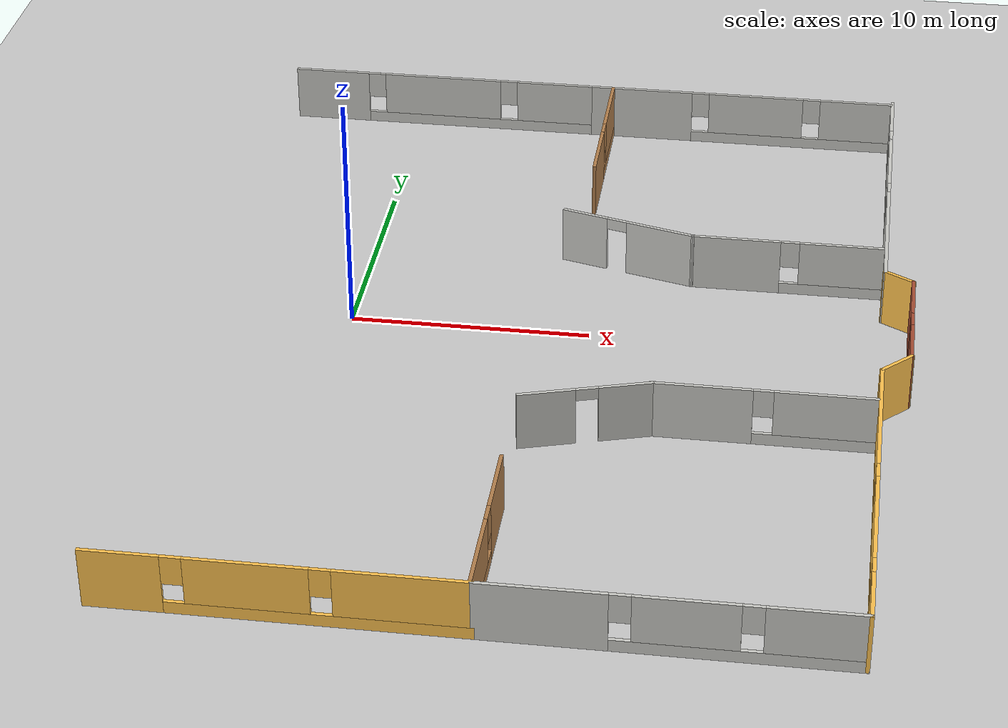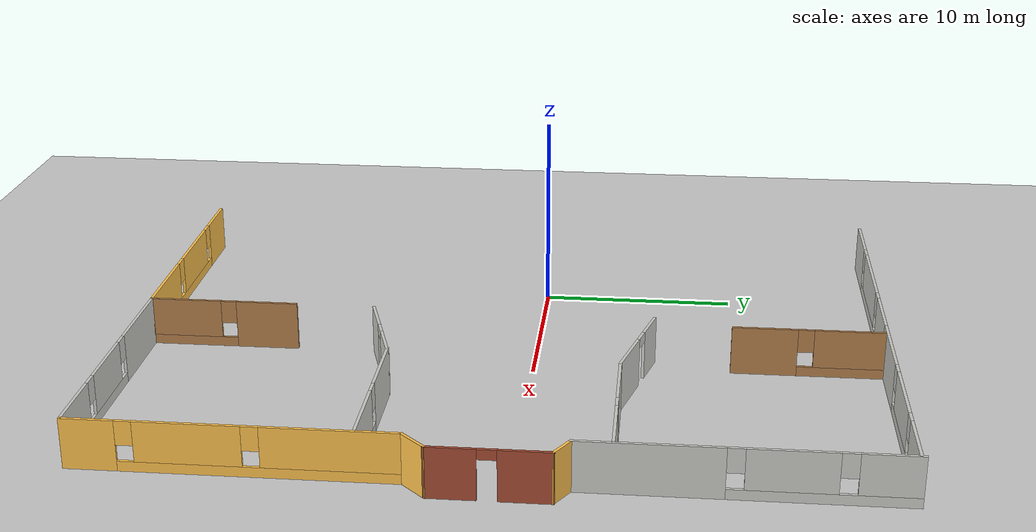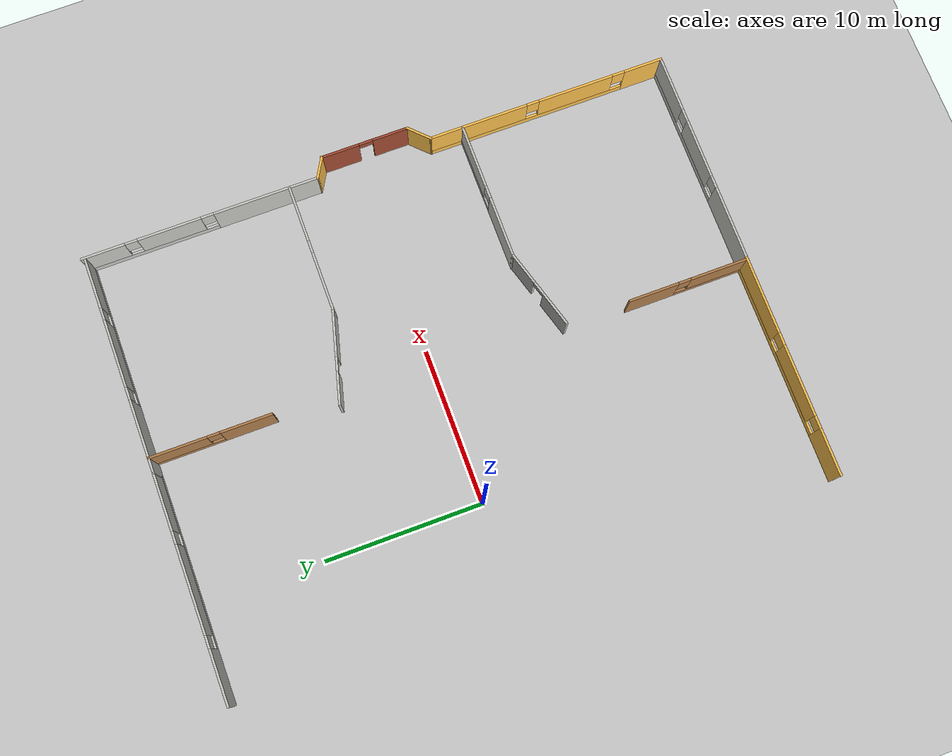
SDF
<sdf version="1.6">
 <world name="default">
  <model name="ground_plane">
   <static>1</static>
   <link name="link">
    <collision name="collision">
     <geometry><plane><normal>0 0 1</normal><size>100 100</size></plane></geometry>
     <surface><friction><ode><mu>100</mu><mu2>50</mu2></ode></friction></surface>
    </collision>
    <visual name="visual">
     <cast_shadows>0</cast_shadows>
     <geometry><plane><normal>0 0 1</normal><size>100 100</size></plane></geometry>
     <material>
      <script><uri>file://media/materials/scripts/gazebo.material</uri><name>Gazebo/Grey</name></script>
     </material>
    </visual>
   </link>
  </model>
  <model name="model">
   <pose>1.3797 -1.1711 0 0 -0 0</pose>
   <link name="Wall_24">
    <pose>-0.167493 -18.9183 0 0 -0 0</pose>
    <visual name="Wall_24_Visual_0">
     <pose>-5.61853 0 1.25 0 -0 0</pose>
     <geometry><box><size>3.01295 0.15 2.5</size></box></geometry>
     <material>
      <script><uri>file://media/materials/scripts/gazebo.material</uri><name>Gazebo/Grey</name></script>
      <ambient>1 0.764706 0.305882 1</ambient>
     </material>
     <meta><layer>0</layer></meta>
    </visual>
    <collision name="Wall_24_Collision_0">
     <geometry><box><size>3.01295 0.15 2.5</size></box></geometry>
     <pose>-5.61853 0 1.25 0 -0 0</pose>
    </collision>
    <visual name="Wall_24_Visual_1">
     <pose>1.50647 0 0.25 0 -0 0</pose>
     <geometry><box><size>11.2371 0.15 0.5</size></box></geometry>
     <material>
      <script><uri>file://media/materials/scripts/gazebo.material</uri><name>Gazebo/Grey</name></script>
      <ambient>1 0.764706 0.305882 1</ambient>
     </material>
     <meta><layer>0</layer></meta>
    </visual>
    <collision name="Wall_24_Collision_1">
     <geometry><box><size>11.2371 0.15 0.5</size></box></geometry>
     <pose>1.50647 0 0.25 0 -0 0</pose>
    </collision>
    <visual name="Wall_24_Visual_2">
     <pose>-1.02682 0 1.5 0 -0 0</pose>
     <geometry><box><size>4.57046 0.15 2</size></box></geometry>
     <material>
      <script><uri>file://media/materials/scripts/gazebo.material</uri><name>Gazebo/Grey</name></script>
      <ambient>1 0.764706 0.305882 1</ambient>
     </material>
     <meta><layer>0</layer></meta>
    </visual>
    <collision name="Wall_24_Collision_2">
     <geometry><box><size>4.57046 0.15 2</size></box></geometry>
     <pose>-1.02682 0 1.5 0 -0 0</pose>
    </collision>
    <visual name="Wall_24_Visual_3">
     <pose>4.5917 0 1.5 0 -0 0</pose>
     <geometry><box><size>5.06659 0.15 2</size></box></geometry>
     <material>
      <script><uri>file://media/materials/scripts/gazebo.material</uri><name>Gazebo/Grey</name></script>
      <ambient>1 0.764706 0.305882 1</ambient>
     </material>
     <meta><layer>0</layer></meta>
    </visual>
    <collision name="Wall_24_Collision_3">
     <geometry><box><size>5.06659 0.15 2</size></box></geometry>
     <pose>4.5917 0 1.5 0 -0 0</pose>
    </collision>
    <visual name="Wall_24_Visual_4">
     <pose>-3.71205 0 1.9 0 -0 0</pose>
     <geometry><box><size>0.8 0.15 1.2</size></box></geometry>
     <material>
      <script><uri>file://media/materials/scripts/gazebo.material</uri><name>Gazebo/Grey</name></script>
      <ambient>1 0.764706 0.305882 1</ambient>
     </material>
     <meta><layer>0</layer></meta>
    </visual>
    <collision name="Wall_24_Collision_4">
     <geometry><box><size>0.8 0.15 1.2</size></box></geometry>
     <pose>-3.71205 0 1.9 0 -0 0</pose>
    </collision>
    <visual name="Wall_24_Visual_5">
     <pose>1.65841 0 1.9 0 -0 0</pose>
     <geometry><box><size>0.8 0.15 1.2</size></box></geometry>
     <material>
      <script><uri>file://media/materials/scripts/gazebo.material</uri><name>Gazebo/Grey</name></script>
      <ambient>1 0.764706 0.305882 1</ambient>
     </material>
     <meta><layer>0</layer></meta>
    </visual>
    <collision name="Wall_24_Collision_5">
     <geometry><box><size>0.8 0.15 1.2</size></box></geometry>
     <pose>1.65841 0 1.9 0 -0 0</pose>
    </collision>
   </link>
   <link name="Wall_25">
    <pose>13.8075 -18.9183 0 0 -0 0</pose>
    <visual name="Wall_25_Visual_0">
     <pose>-4.56921 0 1.25 0 -0 0</pose>
     <geometry><box><size>4.86159 0.15 2.5</size></box></geometry>
     <material>
      <script><uri>file://media/materials/scripts/gazebo.material</uri><name>Gazebo/CeilingTiled</name></script>
      <ambient>1 0.764706 0.305882 1</ambient>
     </material>
     <meta><layer>0</layer></meta>
    </visual>
    <collision name="Wall_25_Collision_0">
     <geometry><box><size>4.86159 0.15 2.5</size></box></geometry>
     <pose>-4.56921 0 1.25 0 -0 0</pose>
    </collision>
    <visual name="Wall_25_Visual_1">
     <pose>2.43079 0 0.25 0 -0 0</pose>
     <geometry><box><size>9.13841 0.15 0.5</size></box></geometry>
     <material>
      <script><uri>file://media/materials/scripts/gazebo.material</uri><name>Gazebo/CeilingTiled</name></script>
      <ambient>1 0.764706 0.305882 1</ambient>
     </material>
     <meta><layer>0</layer></meta>
    </visual>
    <collision name="Wall_25_Collision_1">
     <geometry><box><size>9.13841 0.15 0.5</size></box></geometry>
     <pose>2.43079 0 0.25 0 -0 0</pose>
    </collision>
    <visual name="Wall_25_Visual_2">
     <pose>0.58065 0 1.5 0 -0 0</pose>
     <geometry><box><size>3.83812 0.15 2</size></box></geometry>
     <material>
      <script><uri>file://media/materials/scripts/gazebo.material</uri><name>Gazebo/CeilingTiled</name></script>
      <ambient>1 0.764706 0.305882 1</ambient>
     </material>
     <meta><layer>0</layer></meta>
    </visual>
    <collision name="Wall_25_Collision_2">
     <geometry><box><size>3.83812 0.15 2</size></box></geometry>
     <pose>0.58065 0 1.5 0 -0 0</pose>
    </collision>
    <visual name="Wall_25_Visual_3">
     <pose>5.14986 0 1.5 0 -0 0</pose>
     <geometry><box><size>3.70029 0.15 2</size></box></geometry>
     <material>
      <script><uri>file://media/materials/scripts/gazebo.material</uri><name>Gazebo/CeilingTiled</name></script>
      <ambient>1 0.764706 0.305882 1</ambient>
     </material>
     <meta><layer>0</layer></meta>
    </visual>
    <collision name="Wall_25_Collision_3">
     <geometry><box><size>3.70029 0.15 2</size></box></geometry>
     <pose>5.14986 0 1.5 0 -0 0</pose>
    </collision>
    <visual name="Wall_25_Visual_4">
     <pose>-1.73841 0 1.9 0 -0 0</pose>
     <geometry><box><size>0.8 0.15 1.2</size></box></geometry>
     <material>
      <script><uri>file://media/materials/scripts/gazebo.material</uri><name>Gazebo/CeilingTiled</name></script>
      <ambient>1 0.764706 0.305882 1</ambient>
     </material>
     <meta><layer>0</layer></meta>
    </visual>
    <collision name="Wall_25_Collision_4">
     <geometry><box><size>0.8 0.15 1.2</size></box></geometry>
     <pose>-1.73841 0 1.9 0 -0 0</pose>
    </collision>
    <visual name="Wall_25_Visual_5">
     <pose>2.89971 0 1.9 0 -0 0</pose>
     <geometry><box><size>0.8 0.15 1.2</size></box></geometry>
     <material>
      <script><uri>file://media/materials/scripts/gazebo.material</uri><name>Gazebo/CeilingTiled</name></script>
      <ambient>1 0.764706 0.305882 1</ambient>
     </material>
     <meta><layer>0</layer></meta>
    </visual>
    <collision name="Wall_25_Collision_5">
     <geometry><box><size>0.8 0.15 1.2</size></box></geometry>
     <pose>2.89971 0 1.9 0 -0 0</pose>
    </collision>
   </link>
   <link name="Wall_26">
    <pose>20.7325 -11.2433 0 0 -0 1.5708</pose>
    <visual name="Wall_26_Visual_0">
     <pose>-6.48124 0 1.25 0 -0 0</pose>
     <geometry><box><size>2.53753 0.15 2.5</size></box></geometry>
     <material>
      <script><uri>file://media/materials/scripts/gazebo.material</uri><name>Gazebo/Grey</name></script>
      <ambient>1 0.764706 0.305882 1</ambient>
     </material>
     <meta><layer>0</layer></meta>
    </visual>
    <collision name="Wall_26_Collision_0">
     <geometry><box><size>2.53753 0.15 2.5</size></box></geometry>
     <pose>-6.48124 0 1.25 0 -0 0</pose>
    </collision>
    <visual name="Wall_26_Visual_1">
     <pose>1.26876 0 0.25 0 -0 0</pose>
     <geometry><box><size>12.9625 0.15 0.5</size></box></geometry>
     <material>
      <script><uri>file://media/materials/scripts/gazebo.material</uri><name>Gazebo/Grey</name></script>
      <ambient>1 0.764706 0.305882 1</ambient>
     </material>
     <meta><layer>0</layer></meta>
    </visual>
    <collision name="Wall_26_Collision_1">
     <geometry><box><size>12.9625 0.15 0.5</size></box></geometry>
     <pose>1.26876 0 0.25 0 -0 0</pose>
    </collision>
    <visual name="Wall_26_Visual_2">
     <pose>-1.95201 0 1.5 0 -0 0</pose>
     <geometry><box><size>4.92092 0.15 2</size></box></geometry>
     <material>
      <script><uri>file://media/materials/scripts/gazebo.material</uri><name>Gazebo/Grey</name></script>
      <ambient>1 0.764706 0.305882 1</ambient>
     </material>
     <meta><layer>0</layer></meta>
    </visual>
    <collision name="Wall_26_Collision_2">
     <geometry><box><size>4.92092 0.15 2</size></box></geometry>
     <pose>-1.95201 0 1.5 0 -0 0</pose>
    </collision>
    <visual name="Wall_26_Visual_3">
     <pose>4.52922 0 1.5 0 -0 0</pose>
     <geometry><box><size>6.44155 0.15 2</size></box></geometry>
     <material>
      <script><uri>file://media/materials/scripts/gazebo.material</uri><name>Gazebo/Grey</name></script>
      <ambient>1 0.764706 0.305882 1</ambient>
     </material>
     <meta><layer>0</layer></meta>
    </visual>
    <collision name="Wall_26_Collision_3">
     <geometry><box><size>6.44155 0.15 2</size></box></geometry>
     <pose>4.52922 0 1.5 0 -0 0</pose>
    </collision>
    <visual name="Wall_26_Visual_4">
     <pose>-4.81247 0 1.9 0 -0 0</pose>
     <geometry><box><size>0.8 0.15 1.2</size></box></geometry>
     <material>
      <script><uri>file://media/materials/scripts/gazebo.material</uri><name>Gazebo/Grey</name></script>
      <ambient>1 0.764706 0.305882 1</ambient>
     </material>
     <meta><layer>0</layer></meta>
    </visual>
    <collision name="Wall_26_Collision_4">
     <geometry><box><size>0.8 0.15 1.2</size></box></geometry>
     <pose>-4.81247 0 1.9 0 -0 0</pose>
    </collision>
    <visual name="Wall_26_Visual_5">
     <pose>0.908446 0 1.9 0 -0 0</pose>
     <geometry><box><size>0.8 0.15 1.2</size></box></geometry>
     <material>
      <script><uri>file://media/materials/scripts/gazebo.material</uri><name>Gazebo/Grey</name></script>
      <ambient>1 0.764706 0.305882 1</ambient>
     </material>
     <meta><layer>0</layer></meta>
    </visual>
    <collision name="Wall_26_Collision_5">
     <geometry><box><size>0.8 0.15 1.2</size></box></geometry>
     <pose>0.908446 0 1.9 0 -0 0</pose>
    </collision>
   </link>
   <link name="Wall_27">
    <collision name="Wall_27_Collision">
     <geometry><box><size>1.75 0.15 2.5</size></box></geometry>
     <pose>0 0 1.25 0 -0 0</pose>
    </collision>
    <visual name="Wall_27_Visual">
     <pose>0 0 1.25 0 -0 0</pose>
     <geometry><box><size>1.75 0.15 2.5</size></box></geometry>
     <material>
      <script><uri>file://media/materials/scripts/gazebo.material</uri><name>Gazebo/Grey</name></script>
      <ambient>1 0.764706 0.305882 1</ambient>
     </material>
     <meta><layer>0</layer></meta>
    </visual>
    <pose>21.2982 -3.00259 0 0 -0 0.785398</pose>
   </link>
   <link name="Wall_28">
    <pose>21.8639 0.363092 0 0 -0 1.5708</pose>
    <visual name="Wall_28_Visual_0">
     <pose>-1.69424 0 1.25 0 -0 0</pose>
     <geometry><box><size>2.36151 0.15 2.5</size></box></geometry>
     <material>
      <script><uri>file://media/materials/scripts/gazebo.material</uri><name>Gazebo/Bricks</name></script>
      <ambient>1 1 1 1</ambient>
     </material>
     <meta><layer>0</layer></meta>
    </visual>
    <collision name="Wall_28_Collision_0">
     <geometry><box><size>2.36151 0.15 2.5</size></box></geometry>
     <pose>-1.69424 0 1.25 0 -0 0</pose>
    </collision>
    <visual name="Wall_28_Visual_1">
     <pose>1.63076 0 1.25 0 -0 0</pose>
     <geometry><box><size>2.48849 0.15 2.5</size></box></geometry>
     <material>
      <script><uri>file://media/materials/scripts/gazebo.material</uri><name>Gazebo/Bricks</name></script>
      <ambient>1 1 1 1</ambient>
     </material>
     <meta><layer>0</layer></meta>
    </visual>
    <collision name="Wall_28_Collision_1">
     <geometry><box><size>2.48849 0.15 2.5</size></box></geometry>
     <pose>1.63076 0 1.25 0 -0 0</pose>
    </collision>
    <visual name="Wall_28_Visual_2">
     <pose>-0.063486 0 2.25 0 -0 0</pose>
     <geometry><box><size>0.9 0.15 0.5</size></box></geometry>
     <material>
      <script><uri>file://media/materials/scripts/gazebo.material</uri><name>Gazebo/Bricks</name></script>
      <ambient>1 1 1 1</ambient>
     </material>
     <meta><layer>0</layer></meta>
    </visual>
    <collision name="Wall_28_Collision_2">
     <geometry><box><size>0.9 0.15 0.5</size></box></geometry>
     <pose>-0.063486 0 2.25 0 -0 0</pose>
    </collision>
   </link>
   <link name="Wall_29">
    <collision name="Wall_29_Collision">
     <geometry><box><size>1.5 0.15 2.5</size></box></geometry>
     <pose>0 0 1.25 0 -0 0</pose>
    </collision>
    <visual name="Wall_29_Visual">
     <pose>0 0 1.25 0 -0 0</pose>
     <geometry><box><size>1.5 0.15 2.5</size></box></geometry>
     <material>
      <script><uri>file://media/materials/scripts/gazebo.material</uri><name>Gazebo/Grey</name></script>
      <ambient>1 0.764706 0.305882 1</ambient>
     </material>
     <meta><layer>0</layer></meta>
    </visual>
    <pose>21.2793 3.50059 0 0 -0 2.61799</pose>
   </link>
   <link name="Wall_42">
    <pose>20.6947 11.3881 0 0 -0 1.5708</pose>
    <visual name="Wall_42_Visual_0">
     <pose>-4.22815 0 1.25 0 -0 0</pose>
     <geometry><box><size>6.7937 0.15 2.5</size></box></geometry>
     <material>
      <script><uri>file://media/materials/scripts/gazebo.material</uri><name>Gazebo/CeilingTiled</name></script>
      <ambient>1 0.764706 0.305882 1</ambient>
     </material>
     <meta><layer>0</layer></meta>
    </visual>
    <collision name="Wall_42_Collision_0">
     <geometry><box><size>6.7937 0.15 2.5</size></box></geometry>
     <pose>-4.22815 0 1.25 0 -0 0</pose>
    </collision>
    <visual name="Wall_42_Visual_1">
     <pose>3.39685 0 0.25 0 -0 0</pose>
     <geometry><box><size>8.4563 0.15 0.5</size></box></geometry>
     <material>
      <script><uri>file://media/materials/scripts/gazebo.material</uri><name>Gazebo/CeilingTiled</name></script>
      <ambient>1 0.764706 0.305882 1</ambient>
     </material>
     <meta><layer>0</layer></meta>
    </visual>
    <collision name="Wall_42_Collision_1">
     <geometry><box><size>8.4563 0.15 0.5</size></box></geometry>
     <pose>3.39685 0 0.25 0 -0 0</pose>
    </collision>
    <visual name="Wall_42_Visual_2">
     <pose>2.00082 0 1.5 0 -0 0</pose>
     <geometry><box><size>4.06425 0.15 2</size></box></geometry>
     <material>
      <script><uri>file://media/materials/scripts/gazebo.material</uri><name>Gazebo/CeilingTiled</name></script>
      <ambient>1 0.764706 0.305882 1</ambient>
     </material>
     <meta><layer>0</layer></meta>
    </visual>
    <collision name="Wall_42_Collision_2">
     <geometry><box><size>4.06425 0.15 2</size></box></geometry>
     <pose>2.00082 0 1.5 0 -0 0</pose>
    </collision>
    <visual name="Wall_42_Visual_3">
     <pose>6.22897 0 1.5 0 -0 0</pose>
     <geometry><box><size>2.79205 0.15 2</size></box></geometry>
     <material>
      <script><uri>file://media/materials/scripts/gazebo.material</uri><name>Gazebo/CeilingTiled</name></script>
      <ambient>1 0.764706 0.305882 1</ambient>
     </material>
     <meta><layer>0</layer></meta>
    </visual>
    <collision name="Wall_42_Collision_3">
     <geometry><box><size>2.79205 0.15 2</size></box></geometry>
     <pose>6.22897 0 1.5 0 -0 0</pose>
    </collision>
    <visual name="Wall_42_Visual_4">
     <pose>-0.431303 0 1.9 0 -0 0</pose>
     <geometry><box><size>0.8 0.15 1.2</size></box></geometry>
     <material>
      <script><uri>file://media/materials/scripts/gazebo.material</uri><name>Gazebo/CeilingTiled</name></script>
      <ambient>1 0.764706 0.305882 1</ambient>
     </material>
     <meta><layer>0</layer></meta>
    </visual>
    <collision name="Wall_42_Collision_4">
     <geometry><box><size>0.8 0.15 1.2</size></box></geometry>
     <pose>-0.431303 0 1.9 0 -0 0</pose>
    </collision>
    <visual name="Wall_42_Visual_5">
     <pose>4.43295 0 1.9 0 -0 0</pose>
     <geometry><box><size>0.8 0.15 1.2</size></box></geometry>
     <material>
      <script><uri>file://media/materials/scripts/gazebo.material</uri><name>Gazebo/CeilingTiled</name></script>
      <ambient>1 0.764706 0.305882 1</ambient>
     </material>
     <meta><layer>0</layer></meta>
    </visual>
    <collision name="Wall_42_Collision_5">
     <geometry><box><size>0.8 0.15 1.2</size></box></geometry>
     <pose>4.43295 0 1.9 0 -0 0</pose>
    </collision>
   </link>
   <link name="Wall_52">
    <pose>-0.292493 18.7535 0 0 -0 0</pose>
    <visual name="Wall_52_Visual_0">
     <pose>-5.39608 0 1.25 0 -0 0</pose>
     <geometry><box><size>3.45785 0.15 2.5</size></box></geometry>
     <material>
      <script><uri>file://media/materials/scripts/gazebo.material</uri><name>Gazebo/CeilingTiled</name></script>
      <ambient>1 0.764706 0.305882 1</ambient>
     </material>
     <meta><layer>0</layer></meta>
    </visual>
    <collision name="Wall_52_Collision_0">
     <geometry><box><size>3.45785 0.15 2.5</size></box></geometry>
     <pose>-5.39608 0 1.25 0 -0 0</pose>
    </collision>
    <visual name="Wall_52_Visual_1">
     <pose>1.72892 0 0.25 0 -0 0</pose>
     <geometry><box><size>10.7922 0.15 0.5</size></box></geometry>
     <material>
      <script><uri>file://media/materials/scripts/gazebo.material</uri><name>Gazebo/CeilingTiled</name></script>
      <ambient>1 0.764706 0.305882 1</ambient>
     </material>
     <meta><layer>0</layer></meta>
    </visual>
    <collision name="Wall_52_Collision_1">
     <geometry><box><size>10.7922 0.15 0.5</size></box></geometry>
     <pose>1.72892 0 0.25 0 -0 0</pose>
    </collision>
    <visual name="Wall_52_Visual_2">
     <pose>-0.115746 0 1.5 0 -0 0</pose>
     <geometry><box><size>5.50281 0.15 2</size></box></geometry>
     <material>
      <script><uri>file://media/materials/scripts/gazebo.material</uri><name>Gazebo/CeilingTiled</name></script>
      <ambient>1 0.764706 0.305882 1</ambient>
     </material>
     <meta><layer>0</layer></meta>
    </visual>
    <collision name="Wall_52_Collision_2">
     <geometry><box><size>5.50281 0.15 2</size></box></geometry>
     <pose>-0.115746 0 1.5 0 -0 0</pose>
    </collision>
    <visual name="Wall_52_Visual_3">
     <pose>5.28033 0 1.5 0 -0 0</pose>
     <geometry><box><size>3.68934 0.15 2</size></box></geometry>
     <material>
      <script><uri>file://media/materials/scripts/gazebo.material</uri><name>Gazebo/CeilingTiled</name></script>
      <ambient>1 0.764706 0.305882 1</ambient>
     </material>
     <meta><layer>0</layer></meta>
    </visual>
    <collision name="Wall_52_Collision_3">
     <geometry><box><size>3.68934 0.15 2</size></box></geometry>
     <pose>5.28033 0 1.5 0 -0 0</pose>
    </collision>
    <visual name="Wall_52_Visual_4">
     <pose>-3.26715 0 1.9 0 -0 0</pose>
     <geometry><box><size>0.8 0.15 1.2</size></box></geometry>
     <material>
      <script><uri>file://media/materials/scripts/gazebo.material</uri><name>Gazebo/CeilingTiled</name></script>
      <ambient>1 0.764706 0.305882 1</ambient>
     </material>
     <meta><layer>0</layer></meta>
    </visual>
    <collision name="Wall_52_Collision_4">
     <geometry><box><size>0.8 0.15 1.2</size></box></geometry>
     <pose>-3.26715 0 1.9 0 -0 0</pose>
    </collision>
    <visual name="Wall_52_Visual_5">
     <pose>3.03566 0 1.9 0 -0 0</pose>
     <geometry><box><size>0.8 0.15 1.2</size></box></geometry>
     <material>
      <script><uri>file://media/materials/scripts/gazebo.material</uri><name>Gazebo/CeilingTiled</name></script>
      <ambient>1 0.764706 0.305882 1</ambient>
     </material>
     <meta><layer>0</layer></meta>
    </visual>
    <collision name="Wall_52_Collision_5">
     <geometry><box><size>0.8 0.15 1.2</size></box></geometry>
     <pose>3.03566 0 1.9 0 -0 0</pose>
    </collision>
   </link>
   <link name="Wall_53">
    <pose>13.6825 18.7535 0 0 -0 0</pose>
    <visual name="Wall_53_Visual_0">
     <pose>-4.64128 0 1.25 0 -0 0</pose>
     <geometry><box><size>4.71744 0.15 2.5</size></box></geometry>
     <material>
      <script><uri>file://media/materials/scripts/gazebo.material</uri><name>Gazebo/CeilingTiled</name></script>
      <ambient>1 0.764706 0.305882 1</ambient>
     </material>
     <meta><layer>0</layer></meta>
    </visual>
    <collision name="Wall_53_Collision_0">
     <geometry><box><size>4.71744 0.15 2.5</size></box></geometry>
     <pose>-4.64128 0 1.25 0 -0 0</pose>
    </collision>
    <visual name="Wall_53_Visual_1">
     <pose>2.35872 0 0.25 0 -0 0</pose>
     <geometry><box><size>9.28256 0.15 0.5</size></box></geometry>
     <material>
      <script><uri>file://media/materials/scripts/gazebo.material</uri><name>Gazebo/CeilingTiled</name></script>
      <ambient>1 0.764706 0.305882 1</ambient>
     </material>
     <meta><layer>0</layer></meta>
    </visual>
    <collision name="Wall_53_Collision_1">
     <geometry><box><size>9.28256 0.15 0.5</size></box></geometry>
     <pose>2.35872 0 0.25 0 -0 0</pose>
    </collision>
    <visual name="Wall_53_Visual_2">
     <pose>0.700074 0 1.5 0 -0 0</pose>
     <geometry><box><size>4.36526 0.15 2</size></box></geometry>
     <material>
      <script><uri>file://media/materials/scripts/gazebo.material</uri><name>Gazebo/CeilingTiled</name></script>
      <ambient>1 0.764706 0.305882 1</ambient>
     </material>
     <meta><layer>0</layer></meta>
    </visual>
    <collision name="Wall_53_Collision_2">
     <geometry><box><size>4.36526 0.15 2</size></box></geometry>
     <pose>0.700074 0 1.5 0 -0 0</pose>
    </collision>
    <visual name="Wall_53_Visual_3">
     <pose>5.34135 0 1.5 0 -0 0</pose>
     <geometry><box><size>3.31729 0.15 2</size></box></geometry>
     <material>
      <script><uri>file://media/materials/scripts/gazebo.material</uri><name>Gazebo/CeilingTiled</name></script>
      <ambient>1 0.764706 0.305882 1</ambient>
     </material>
     <meta><layer>0</layer></meta>
    </visual>
    <collision name="Wall_53_Collision_3">
     <geometry><box><size>3.31729 0.15 2</size></box></geometry>
     <pose>5.34135 0 1.5 0 -0 0</pose>
    </collision>
    <visual name="Wall_53_Visual_4">
     <pose>-1.88256 0 1.9 0 -0 0</pose>
     <geometry><box><size>0.8 0.15 1.2</size></box></geometry>
     <material>
      <script><uri>file://media/materials/scripts/gazebo.material</uri><name>Gazebo/CeilingTiled</name></script>
      <ambient>1 0.764706 0.305882 1</ambient>
     </material>
     <meta><layer>0</layer></meta>
    </visual>
    <collision name="Wall_53_Collision_4">
     <geometry><box><size>0.8 0.15 1.2</size></box></geometry>
     <pose>-1.88256 0 1.9 0 -0 0</pose>
    </collision>
    <visual name="Wall_53_Visual_5">
     <pose>3.28271 0 1.9 0 -0 0</pose>
     <geometry><box><size>0.8 0.15 1.2</size></box></geometry>
     <material>
      <script><uri>file://media/materials/scripts/gazebo.material</uri><name>Gazebo/CeilingTiled</name></script>
      <ambient>1 0.764706 0.305882 1</ambient>
     </material>
     <meta><layer>0</layer></meta>
    </visual>
    <collision name="Wall_53_Collision_5">
     <geometry><box><size>0.8 0.15 1.2</size></box></geometry>
     <pose>3.28271 0 1.9 0 -0 0</pose>
    </collision>
   </link>
   <link name="Wall_58">
    <pose>9.69751 6.42988 0 0 0 -0.261799</pose>
    <visual name="Wall_58_Visual_0">
     <pose>-1.98198 0 1.25 0 -0 0</pose>
     <geometry><box><size>2.03605 0.15 2.5</size></box></geometry>
     <material>
      <script><uri>file://media/materials/scripts/gazebo.material</uri><name>Gazebo/CeilingTiled</name></script>
      <ambient>0.333333 0.666667 1 1</ambient>
     </material>
     <meta><layer>0</layer></meta>
    </visual>
    <collision name="Wall_58_Collision_0">
     <geometry><box><size>2.03605 0.15 2.5</size></box></geometry>
     <pose>-1.98198 0 1.25 0 -0 0</pose>
    </collision>
    <visual name="Wall_58_Visual_1">
     <pose>1.46802 0 1.25 0 -0 0</pose>
     <geometry><box><size>3.06395 0.15 2.5</size></box></geometry>
     <material>
      <script><uri>file://media/materials/scripts/gazebo.material</uri><name>Gazebo/CeilingTiled</name></script>
      <ambient>0.333333 0.666667 1 1</ambient>
     </material>
     <meta><layer>0</layer></meta>
    </visual>
    <collision name="Wall_58_Collision_1">
     <geometry><box><size>3.06395 0.15 2.5</size></box></geometry>
     <pose>1.46802 0 1.25 0 -0 0</pose>
    </collision>
    <visual name="Wall_58_Visual_2">
     <pose>-0.513955 0 2.25 0 -0 0</pose>
     <geometry><box><size>0.9 0.15 0.5</size></box></geometry>
     <material>
      <script><uri>file://media/materials/scripts/gazebo.material</uri><name>Gazebo/CeilingTiled</name></script>
      <ambient>0.333333 0.666667 1 1</ambient>
     </material>
     <meta><layer>0</layer></meta>
    </visual>
    <collision name="Wall_58_Collision_2">
     <geometry><box><size>0.9 0.15 0.5</size></box></geometry>
     <pose>-0.513955 0 2.25 0 -0 0</pose>
    </collision>
   </link>
   <link name="Wall_59">
    <pose>16.5728 5.67284 0 0 -0 0</pose>
    <visual name="Wall_59_Visual_0">
     <pose>-2.21976 0 1.25 0 -0 0</pose>
     <geometry><box><size>3.81048 0.15 2.5</size></box></geometry>
     <material>
      <script><uri>file://media/materials/scripts/gazebo.material</uri><name>Gazebo/CeilingTiled</name></script>
      <ambient>0.333333 0.666667 1 1</ambient>
     </material>
     <meta><layer>0</layer></meta>
    </visual>
    <collision name="Wall_59_Collision_0">
     <geometry><box><size>3.81048 0.15 2.5</size></box></geometry>
     <pose>-2.21976 0 1.25 0 -0 0</pose>
    </collision>
    <visual name="Wall_59_Visual_1">
     <pose>1.90524 0 0.25 0 -0 0</pose>
     <geometry><box><size>4.43952 0.15 0.5</size></box></geometry>
     <material>
      <script><uri>file://media/materials/scripts/gazebo.material</uri><name>Gazebo/CeilingTiled</name></script>
      <ambient>0.333333 0.666667 1 1</ambient>
     </material>
     <meta><layer>0</layer></meta>
    </visual>
    <collision name="Wall_59_Collision_1">
     <geometry><box><size>4.43952 0.15 0.5</size></box></geometry>
     <pose>1.90524 0 0.25 0 -0 0</pose>
    </collision>
    <visual name="Wall_59_Visual_2">
     <pose>2.30524 0 1.5 0 -0 0</pose>
     <geometry><box><size>3.63952 0.15 2</size></box></geometry>
     <material>
      <script><uri>file://media/materials/scripts/gazebo.material</uri><name>Gazebo/CeilingTiled</name></script>
      <ambient>0.333333 0.666667 1 1</ambient>
     </material>
     <meta><layer>0</layer></meta>
    </visual>
    <collision name="Wall_59_Collision_2">
     <geometry><box><size>3.63952 0.15 2</size></box></geometry>
     <pose>2.30524 0 1.5 0 -0 0</pose>
    </collision>
    <visual name="Wall_59_Visual_3">
     <pose>0.085482 0 1.9 0 -0 0</pose>
     <geometry><box><size>0.8 0.15 1.2</size></box></geometry>
     <material>
      <script><uri>file://media/materials/scripts/gazebo.material</uri><name>Gazebo/CeilingTiled</name></script>
      <ambient>0.333333 0.666667 1 1</ambient>
     </material>
     <meta><layer>0</layer></meta>
    </visual>
    <collision name="Wall_59_Collision_3">
     <geometry><box><size>0.8 0.15 1.2</size></box></geometry>
     <pose>0.085482 0 1.9 0 -0 0</pose>
    </collision>
   </link>
   <link name="Wall_64">
    <pose>9.36596 -6.44203 0 0 -0 0.290428</pose>
    <visual name="Wall_64_Visual_0">
     <pose>-1.54388 0 1.25 0 -0 0</pose>
     <geometry><box><size>2.32739 0.15 2.5</size></box></geometry>
     <material>
      <script><uri>file://media/materials/scripts/gazebo.material</uri><name>Gazebo/CeilingTiled</name></script>
      <ambient>0.333333 0.666667 1 1</ambient>
     </material>
     <meta><layer>0</layer></meta>
    </visual>
    <collision name="Wall_64_Collision_0">
     <geometry><box><size>2.32739 0.15 2.5</size></box></geometry>
     <pose>-1.54388 0 1.25 0 -0 0</pose>
    </collision>
    <visual name="Wall_64_Visual_1">
     <pose>1.6137 0 1.25 0 -0 0</pose>
     <geometry><box><size>2.18776 0.15 2.5</size></box></geometry>
     <material>
      <script><uri>file://media/materials/scripts/gazebo.material</uri><name>Gazebo/CeilingTiled</name></script>
      <ambient>0.333333 0.666667 1 1</ambient>
     </material>
     <meta><layer>0</layer></meta>
    </visual>
    <collision name="Wall_64_Collision_1">
     <geometry><box><size>2.18776 0.15 2.5</size></box></geometry>
     <pose>1.6137 0 1.25 0 -0 0</pose>
    </collision>
    <visual name="Wall_64_Visual_2">
     <pose>0.069817 0 2.25 0 -0 0</pose>
     <geometry><box><size>0.9 0.15 0.5</size></box></geometry>
     <material>
      <script><uri>file://media/materials/scripts/gazebo.material</uri><name>Gazebo/CeilingTiled</name></script>
      <ambient>0.333333 0.666667 1 1</ambient>
     </material>
     <meta><layer>0</layer></meta>
    </visual>
    <collision name="Wall_64_Collision_2">
     <geometry><box><size>0.9 0.15 0.5</size></box></geometry>
     <pose>0.069817 0 2.25 0 -0 0</pose>
    </collision>
   </link>
   <link name="Wall_69">
    <pose>16.2555 -5.67484 0 0 -0 0</pose>
    <visual name="Wall_69_Visual_0">
     <pose>-2.4638 0 1.25 0 -0 0</pose>
     <geometry><box><size>4.07241 0.15 2.5</size></box></geometry>
     <material>
      <script><uri>file://media/materials/scripts/gazebo.material</uri><name>Gazebo/CeilingTiled</name></script>
      <ambient>0.333333 0.666667 1 1</ambient>
     </material>
     <meta><layer>0</layer></meta>
    </visual>
    <collision name="Wall_69_Collision_0">
     <geometry><box><size>4.07241 0.15 2.5</size></box></geometry>
     <pose>-2.4638 0 1.25 0 -0 0</pose>
    </collision>
    <visual name="Wall_69_Visual_1">
     <pose>2.0362 0 0.25 0 -0 0</pose>
     <geometry><box><size>4.92759 0.15 0.5</size></box></geometry>
     <material>
      <script><uri>file://media/materials/scripts/gazebo.material</uri><name>Gazebo/CeilingTiled</name></script>
      <ambient>0.333333 0.666667 1 1</ambient>
     </material>
     <meta><layer>0</layer></meta>
    </visual>
    <collision name="Wall_69_Collision_1">
     <geometry><box><size>4.92759 0.15 0.5</size></box></geometry>
     <pose>2.0362 0 0.25 0 -0 0</pose>
    </collision>
    <visual name="Wall_69_Visual_2">
     <pose>2.43621 0 1.5 0 -0 0</pose>
     <geometry><box><size>4.12759 0.15 2</size></box></geometry>
     <material>
      <script><uri>file://media/materials/scripts/gazebo.material</uri><name>Gazebo/CeilingTiled</name></script>
      <ambient>0.333333 0.666667 1 1</ambient>
     </material>
     <meta><layer>0</layer></meta>
    </visual>
    <collision name="Wall_69_Collision_2">
     <geometry><box><size>4.12759 0.15 2</size></box></geometry>
     <pose>2.43621 0 1.5 0 -0 0</pose>
    </collision>
    <visual name="Wall_69_Visual_3">
     <pose>-0.02759 0 1.9 0 -0 0</pose>
     <geometry><box><size>0.8 0.15 1.2</size></box></geometry>
     <material>
      <script><uri>file://media/materials/scripts/gazebo.material</uri><name>Gazebo/CeilingTiled</name></script>
      <ambient>0.333333 0.666667 1 1</ambient>
     </material>
     <meta><layer>0</layer></meta>
    </visual>
    <collision name="Wall_69_Collision_3">
     <geometry><box><size>0.8 0.15 1.2</size></box></geometry>
     <pose>-0.02759 0 1.9 0 -0 0</pose>
    </collision>
   </link>
   <link name="Wall_75">
    <pose>6.8064 -15.1004 0 0 0 -1.5708</pose>
    <visual name="Wall_75_Visual_0">
     <pose>-2.27008 0 1.25 0 -0 0</pose>
     <geometry><box><size>3.20983 0.15 2.5</size></box></geometry>
     <material>
      <script><uri>file://media/materials/scripts/gazebo.material</uri><name>Gazebo/Wood</name></script>
      <ambient>0.333333 0.666667 1 1</ambient>
     </material>
     <meta><layer>0</layer></meta>
    </visual>
    <collision name="Wall_75_Collision_0">
     <geometry><box><size>3.20983 0.15 2.5</size></box></geometry>
     <pose>-2.27008 0 1.25 0 -0 0</pose>
    </collision>
    <visual name="Wall_75_Visual_1">
     <pose>1.60492 0 0.25 0 -0 0</pose>
     <geometry><box><size>4.54017 0.15 0.5</size></box></geometry>
     <material>
      <script><uri>file://media/materials/scripts/gazebo.material</uri><name>Gazebo/Wood</name></script>
      <ambient>0.333333 0.666667 1 1</ambient>
     </material>
     <meta><layer>0</layer></meta>
    </visual>
    <collision name="Wall_75_Collision_1">
     <geometry><box><size>4.54017 0.15 0.5</size></box></geometry>
     <pose>1.60492 0 0.25 0 -0 0</pose>
    </collision>
    <visual name="Wall_75_Visual_2">
     <pose>2.00492 0 1.5 0 -0 0</pose>
     <geometry><box><size>3.74017 0.15 2</size></box></geometry>
     <material>
      <script><uri>file://media/materials/scripts/gazebo.material</uri><name>Gazebo/Wood</name></script>
      <ambient>0.333333 0.666667 1 1</ambient>
     </material>
     <meta><layer>0</layer></meta>
    </visual>
    <collision name="Wall_75_Collision_2">
     <geometry><box><size>3.74017 0.15 2</size></box></geometry>
     <pose>2.00492 0 1.5 0 -0 0</pose>
    </collision>
    <visual name="Wall_75_Visual_3">
     <pose>-0.26517 0 1.9 0 -0 0</pose>
     <geometry><box><size>0.8 0.15 1.2</size></box></geometry>
     <material>
      <script><uri>file://media/materials/scripts/gazebo.material</uri><name>Gazebo/Wood</name></script>
      <ambient>0.333333 0.666667 1 1</ambient>
     </material>
     <meta><layer>0</layer></meta>
    </visual>
    <collision name="Wall_75_Collision_3">
     <geometry><box><size>0.8 0.15 1.2</size></box></geometry>
     <pose>-0.26517 0 1.9 0 -0 0</pose>
    </collision>
   </link>
   <link name="Wall_82">
    <pose>7.67952 14.9439 0 0 -0 1.5708</pose>
    <visual name="Wall_82_Visual_0">
     <pose>-2.22962 0 1.25 0 -0 0</pose>
     <geometry><box><size>3.29077 0.15 2.5</size></box></geometry>
     <material>
      <script><uri>file://media/materials/scripts/gazebo.material</uri><name>Gazebo/Wood</name></script>
      <ambient>0.333333 0.666667 1 1</ambient>
     </material>
     <meta><layer>0</layer></meta>
    </visual>
    <collision name="Wall_82_Collision_0">
     <geometry><box><size>3.29077 0.15 2.5</size></box></geometry>
     <pose>-2.22962 0 1.25 0 -0 0</pose>
    </collision>
    <visual name="Wall_82_Visual_1">
     <pose>1.64538 0 0.25 0 -0 0</pose>
     <geometry><box><size>4.45923 0.15 0.5</size></box></geometry>
     <material>
      <script><uri>file://media/materials/scripts/gazebo.material</uri><name>Gazebo/Wood</name></script>
      <ambient>0.333333 0.666667 1 1</ambient>
     </material>
     <meta><layer>0</layer></meta>
    </visual>
    <collision name="Wall_82_Collision_1">
     <geometry><box><size>4.45923 0.15 0.5</size></box></geometry>
     <pose>1.64538 0 0.25 0 -0 0</pose>
    </collision>
    <visual name="Wall_82_Visual_2">
     <pose>2.04538 0 1.5 0 -0 0</pose>
     <geometry><box><size>3.65923 0.15 2</size></box></geometry>
     <material>
      <script><uri>file://media/materials/scripts/gazebo.material</uri><name>Gazebo/Wood</name></script>
      <ambient>0.333333 0.666667 1 1</ambient>
     </material>
     <meta><layer>0</layer></meta>
    </visual>
    <collision name="Wall_82_Collision_2">
     <geometry><box><size>3.65923 0.15 2</size></box></geometry>
     <pose>2.04538 0 1.5 0 -0 0</pose>
    </collision>
    <visual name="Wall_82_Visual_3">
     <pose>-0.184233 0 1.9 0 -0 0</pose>
     <geometry><box><size>0.8 0.15 1.2</size></box></geometry>
     <material>
      <script><uri>file://media/materials/scripts/gazebo.material</uri><name>Gazebo/Wood</name></script>
      <ambient>0.333333 0.666667 1 1</ambient>
     </material>
     <meta><layer>0</layer></meta>
    </visual>
    <collision name="Wall_82_Collision_3">
     <geometry><box><size>0.8 0.15 1.2</size></box></geometry>
     <pose>-0.184233 0 1.9 0 -0 0</pose>
    </collision>
   </link>
   <static>1</static>
  </model>
 </world>
</sdf>
